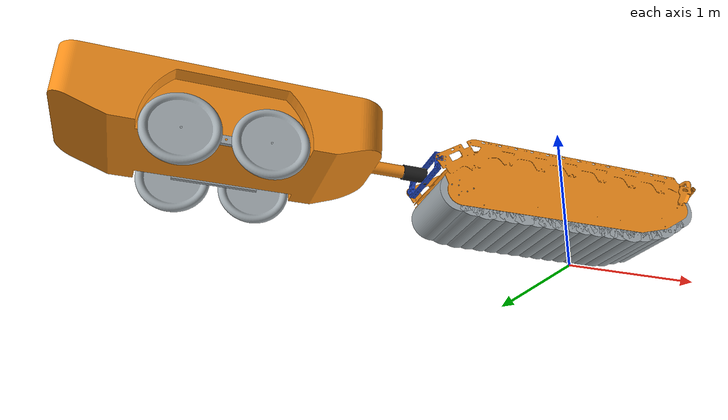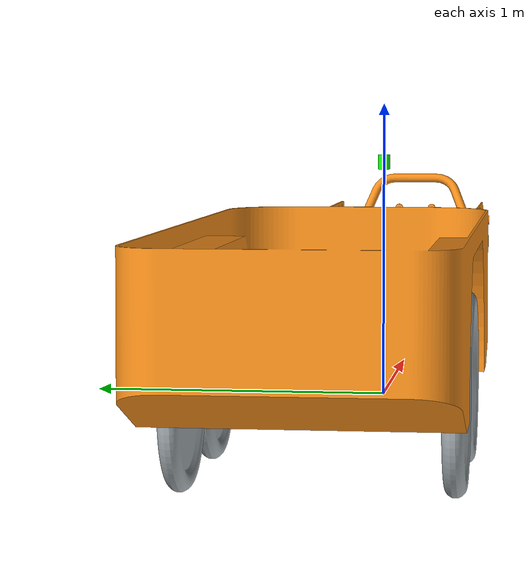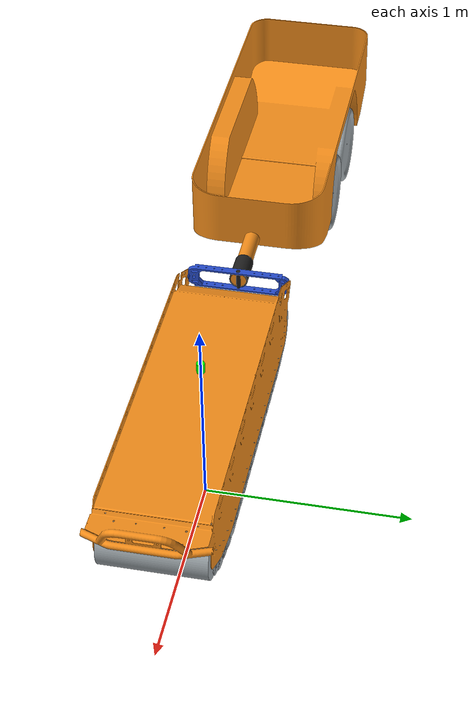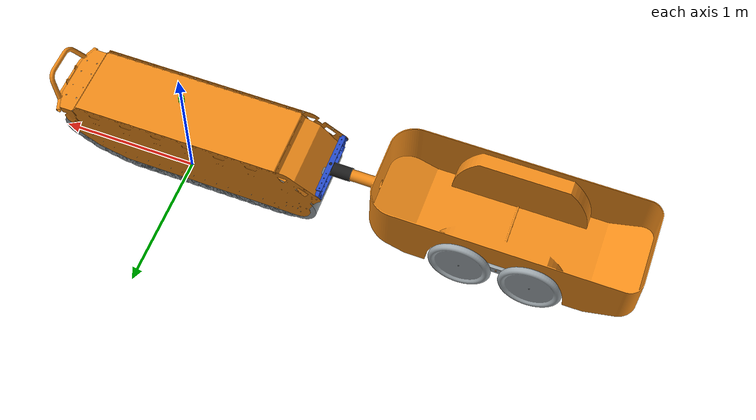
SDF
<sdf version='1.11'>
  <model name='mtt_robot'>
    <!-- Ground-truth OdometryPublisher plugin (moved to model scope so it reliably loads) -->
    <plugin filename='gz-sim-odometry-publisher-system' name='gz::sim::systems::OdometryPublisher'>
      <odom_frame>odom</odom_frame>
      <!-- Use canonical link base_footprint for plugin internal kinematics -->
      <robot_base_frame>base_footprint</robot_base_frame>
      <odom_publish_frequency>50</odom_publish_frequency>
      <dimensions>3</dimensions>
      <xyz_offset>0 0 0</xyz_offset>
      <rpy_offset>0 0 0</rpy_offset>
      <gaussian_noise>0</gaussian_noise>
    </plugin>
    <link name='base_footprint'>
      <inertial>
        <pose>-0.077863512481969974 -0.045475056286235993 0.30071250299806379 0 0 0</pose>
        <mass>150.09999999999999</mass>
        <inertia>
          <ixx>11.07325235560636</ixx>
          <ixy>-0.00035432081778363772</ixy>
          <ixz>-0.0038902195773733439</ixz>
          <iyy>58.294452096505921</iyy>
          <iyz>-0.002272026378053571</iyz>
          <izz>63.680913612779193</izz>
        </inertia>
      </inertial>
      <collision name='base_footprint_fixed_joint_lump__MTT_body_collision'>
        <pose>-0.0034808381178577409 -0.051022168970358453 0.59330103716210747 0 0 3.1415926535897931</pose>
        <geometry>
          <mesh>
            <scale>1 1 1</scale>
            <uri>file://$(find mtt_description)/meshes/collision/boitecollisionmtt_simple.stl</uri>
          </mesh>
        </geometry>
        <surface>
          <contact>
            <ode/>
          </contact>
          <friction>
            <ode/>
          </friction>
        </surface>
      </collision>
      <collision name='base_footprint_fixed_joint_lump__lidar_link_collision_1'>
        <pose>0 0 0.80000000000000004 0 0 0</pose>
        <geometry>
          <cylinder>
            <length>0.050000000000000003</length>
            <radius>0.02</radius>
          </cylinder>
        </geometry>
        <surface>
          <contact>
            <ode/>
          </contact>
          <friction>
            <ode/>
          </friction>
        </surface>
      </collision>
      <visual name='base_footprint_fixed_joint_lump__MTT_body_visual'>
        <pose>-0.0034808381178577409 -0.051022168970358453 0.59330103716210747 0 0 3.1415926535897931</pose>
        <geometry>
          <mesh>
            <scale>1 1 1</scale>
            <uri>file://$(find mtt_description)/meshes/visual/m500_ra-02_r02.stl</uri>
          </mesh>
        </geometry>
        <material>
          <script>
            <name>Gazebo/Orange</name>
            <uri>file://media/materials/scripts/gazebo.material</uri>
          </script>
          <diffuse>1 0.892156899 0.00490196096 1</diffuse>
          <ambient>1 0.892156899 0.00490196096 1</ambient>
        </material>
      </visual>
      <visual name='base_footprint_fixed_joint_lump__lidar_link_visual_1'>
        <pose>0 0 0.80000000000000004 0 0 0</pose>
        <geometry>
          <cylinder>
            <length>0.050000000000000003</length>
            <radius>0.02</radius>
          </cylinder>
        </geometry>
        <material>
          <diffuse>0 1 0 1</diffuse>
          <ambient>0 1 0 1</ambient>
        </material>
      </visual>
      <sensor name='lidar' type='gpu_lidar'>
        <update_rate>10</update_rate>
        <ray>
          <scan>
            <horizontal>
              <samples>360</samples>
              <resolution>1</resolution>
              <min_angle>-3.1400000000000001</min_angle>
              <max_angle>3.1400000000000001</max_angle>
            </horizontal>
          </scan>
          <range>
            <min>0.10000000000000001</min>
            <max>30</max>
          </range>
        </ray>
        <pose>0 0 0.80000000000000004 0 0 0</pose>
      </sensor>
    </link>
    <!-- base_link alias for Nav2 / TF compatibility -->
    <link name='base_link'>
      <pose relative_to='base_footprint'>0 0 0 0 0 0</pose>
    </link>
    <joint name='base_link_joint' type='fixed'>
      <parent>base_footprint</parent>
      <child>base_link</child>
    </joint>
    <joint name='10_continuous' type='revolute'>
      <pose relative_to='base_footprint'>-0.042674791204848093 -0.30260966897135838 0.23720533291369941 1.5707963267948959 0 -7.563394355258877e-16</pose>
      <parent>base_footprint</parent>
      <child>Rouleau_track_10</child>
      <axis>
        <xyz>0 0 1</xyz>
        <limit>
          <effort>-1</effort>
          <velocity>20</velocity>
          <lower>-inf</lower>
          <upper>inf</upper>
        </limit>
        <dynamics>
          <spring_reference>0</spring_reference>
          <spring_stiffness>0</spring_stiffness>
        </dynamics>
      </axis>
    </joint>
    <link name='Rouleau_track_10'>
      <pose relative_to='10_continuous'>0 0 0 0 0 0</pose>
      <inertial>
        <pose>-9.0830111450047394e-12 -8.2227341536032505e-12 -0.26193750000873389 0 0 0</pose>
        <mass>1</mass>
        <inertia>
          <ixx>0.025399999999999999</ixx>
          <ixy>0</ixy>
          <ixz>0</ixz>
          <iyy>0.025399999999999999</iyy>
          <iyz>0</iyz>
          <izz>0.0088900000000000003</izz>
        </inertia>
      </inertial>
      <collision name='Rouleau_track_10_collision'>
        <pose>-2.775557561562891e-17 0 -0.26193749999999999 -1.5707963267948959 -2.9274135154685974e-32 0</pose>
        <geometry>
          <mesh>
            <scale>1 1 1</scale>
            <uri>file://$(find mtt_description)/meshes/visual/rouleaufaketrack_525po.stl</uri>
          </mesh>
        </geometry>
      </collision>
      <visual name='Rouleau_track_10_visual'>
        <pose>-2.775557561562891e-17 0 -0.26193749999999999 -1.5707963267948959 -2.9274135154685974e-32 0</pose>
        <geometry>
          <mesh>
            <scale>1 1 1</scale>
            <uri>file://$(find mtt_description)/meshes/visual/rouleaufaketrack_525po.stl</uri>
          </mesh>
        </geometry>
        <material>
          <diffuse>0.632352948 0.666666687 0.686274529 1</diffuse>
          <ambient>0.632352948 0.666666687 0.686274529 1</ambient>
        </material>
      </visual>
    </link>
    <joint name='11_continuous' type='revolute'>
      <pose relative_to='base_footprint'>-0.1298179530678156 -0.30260966897135838 0.2372153534695029 1.5707963267948959 0 -7.563394355258877e-16</pose>
      <parent>base_footprint</parent>
      <child>Rouleau_track_11</child>
      <axis>
        <xyz>0 0 1</xyz>
        <limit>
          <effort>-1</effort>
          <velocity>20</velocity>
          <lower>-inf</lower>
          <upper>inf</upper>
        </limit>
        <dynamics>
          <spring_reference>0</spring_reference>
          <spring_stiffness>0</spring_stiffness>
        </dynamics>
      </axis>
    </joint>
    <link name='Rouleau_track_11'>
      <pose relative_to='11_continuous'>0 0 0 0 0 0</pose>
      <inertial>
        <pose>-9.0830111450047394e-12 -8.2227341536032505e-12 -0.26193750000873389 0 0 0</pose>
        <mass>1</mass>
        <inertia>
          <ixx>0.025399999999999999</ixx>
          <ixy>0</ixy>
          <ixz>0</ixz>
          <iyy>0.025399999999999999</iyy>
          <iyz>0</iyz>
          <izz>0.0088900000000000003</izz>
        </inertia>
      </inertial>
      <collision name='Rouleau_track_11_collision'>
        <pose>-2.775557561562891e-17 0 -0.26193749999999999 -1.5707963267948959 -2.9274135154685974e-32 0</pose>
        <geometry>
          <mesh>
            <scale>1 1 1</scale>
            <uri>file://$(find mtt_description)/meshes/visual/rouleaufaketrack_525po.stl</uri>
          </mesh>
        </geometry>
      </collision>
      <visual name='Rouleau_track_11_visual'>
        <pose>-2.775557561562891e-17 0 -0.26193749999999999 -1.5707963267948959 -2.9274135154685974e-32 0</pose>
        <geometry>
          <mesh>
            <scale>1 1 1</scale>
            <uri>file://$(find mtt_description)/meshes/visual/rouleaufaketrack_525po.stl</uri>
          </mesh>
        </geometry>
        <material>
          <diffuse>0.632352948 0.666666687 0.686274529 1</diffuse>
          <ambient>0.632352948 0.666666687 0.686274529 1</ambient>
        </material>
      </visual>
    </link>
    <joint name='12_continuous' type='revolute'>
      <pose relative_to='base_footprint'>-0.21696111493078299 -0.30260966897135833 0.2372253740253053 1.5707963267948959 0 -7.563394355258877e-16</pose>
      <parent>base_footprint</parent>
      <child>Rouleau_track_12</child>
      <axis>
        <xyz>0 0 1</xyz>
        <limit>
          <effort>-1</effort>
          <velocity>20</velocity>
          <lower>-inf</lower>
          <upper>inf</upper>
        </limit>
        <dynamics>
          <spring_reference>0</spring_reference>
          <spring_stiffness>0</spring_stiffness>
        </dynamics>
      </axis>
    </joint>
    <link name='Rouleau_track_12'>
      <pose relative_to='12_continuous'>0 0 0 0 0 0</pose>
      <inertial>
        <pose>-9.0829833894291238e-12 -8.2227341536032505e-12 -0.26193750000873389 0 0 0</pose>
        <mass>1</mass>
        <inertia>
          <ixx>0.025399999999999999</ixx>
          <ixy>0</ixy>
          <ixz>0</ixz>
          <iyy>0.025399999999999999</iyy>
          <iyz>0</iyz>
          <izz>0.0088900000000000003</izz>
        </inertia>
      </inertial>
      <collision name='Rouleau_track_12_collision'>
        <pose>0 0 -0.26193749999999999 -1.5707963267948959 -2.9274135154685974e-32 0</pose>
        <geometry>
          <mesh>
            <scale>1 1 1</scale>
            <uri>file://$(find mtt_description)/meshes/visual/rouleaufaketrack_525po.stl</uri>
          </mesh>
        </geometry>
      </collision>
      <visual name='Rouleau_track_12_visual'>
        <pose>0 0 -0.26193749999999999 -1.5707963267948959 -2.9274135154685974e-32 0</pose>
        <geometry>
          <mesh>
            <scale>1 1 1</scale>
            <uri>file://$(find mtt_description)/meshes/visual/rouleaufaketrack_525po.stl</uri>
          </mesh>
        </geometry>
        <material>
          <diffuse>0.632352948 0.666666687 0.686274529 1</diffuse>
          <ambient>0.632352948 0.666666687 0.686274529 1</ambient>
        </material>
      </visual>
    </link>
    <joint name='13_continuous' type='revolute'>
      <pose relative_to='base_footprint'>-0.30410427679375029 -0.30260966897135821 0.23723539458110779 1.5707963267948959 0 -7.563394355258877e-16</pose>
      <parent>base_footprint</parent>
      <child>Rouleau_track_13</child>
      <axis>
        <xyz>0 0 1</xyz>
        <limit>
          <effort>-1</effort>
          <velocity>20</velocity>
          <lower>-inf</lower>
          <upper>inf</upper>
        </limit>
        <dynamics>
          <spring_reference>0</spring_reference>
          <spring_stiffness>0</spring_stiffness>
        </dynamics>
      </axis>
    </joint>
    <link name='Rouleau_track_13'>
      <pose relative_to='13_continuous'>0 0 0 0 0 0</pose>
      <inertial>
        <pose>-9.0829833894291238e-12 -8.2227341536032505e-12 -0.26193750000873389 0 0 0</pose>
        <mass>1</mass>
        <inertia>
          <ixx>0.025399999999999999</ixx>
          <ixy>0</ixy>
          <ixz>0</ixz>
          <iyy>0.025399999999999999</iyy>
          <iyz>0</iyz>
          <izz>0.0088900000000000003</izz>
        </inertia>
      </inertial>
      <collision name='Rouleau_track_13_collision'>
        <pose>0 0 -0.2619375000000001 -1.5707963267948959 -2.9274135154685974e-32 0</pose>
        <geometry>
          <mesh>
            <scale>1 1 1</scale>
            <uri>file://$(find mtt_description)/meshes/visual/rouleaufaketrack_525po.stl</uri>
          </mesh>
        </geometry>
      </collision>
      <visual name='Rouleau_track_13_visual'>
        <pose>0 0 -0.2619375000000001 -1.5707963267948959 -2.9274135154685974e-32 0</pose>
        <geometry>
          <mesh>
            <scale>1 1 1</scale>
            <uri>file://$(find mtt_description)/meshes/visual/rouleaufaketrack_525po.stl</uri>
          </mesh>
        </geometry>
        <material>
          <diffuse>0.632352948 0.666666687 0.686274529 1</diffuse>
          <ambient>0.632352948 0.666666687 0.686274529 1</ambient>
        </material>
      </visual>
    </link>
    <joint name='14_continuous' type='revolute'>
      <pose relative_to='base_footprint'>-0.39124743865671768 -0.30260966897135821 0.2372454151369103 1.5707963267948959 0 -7.563394355258877e-16</pose>
      <parent>base_footprint</parent>
      <child>Rouleau_track_14</child>
      <axis>
        <xyz>0 0 1</xyz>
        <limit>
          <effort>-1</effort>
          <velocity>20</velocity>
          <lower>-inf</lower>
          <upper>inf</upper>
        </limit>
        <dynamics>
          <spring_reference>0</spring_reference>
          <spring_stiffness>0</spring_stiffness>
        </dynamics>
      </axis>
    </joint>
    <link name='Rouleau_track_14'>
      <pose relative_to='14_continuous'>0 0 0 0 0 0</pose>
      <inertial>
        <pose>-9.0830111450047394e-12 -8.2227341536032505e-12 -0.26193750000873389 0 0 0</pose>
        <mass>1</mass>
        <inertia>
          <ixx>0.025399999999999999</ixx>
          <ixy>0</ixy>
          <ixz>0</ixz>
          <iyy>0.025399999999999999</iyy>
          <iyz>0</iyz>
          <izz>0.0088900000000000003</izz>
        </inertia>
      </inertial>
      <collision name='Rouleau_track_14_collision'>
        <pose>-2.775557561562891e-17 0 -0.26193749999999999 -1.5707963267948959 -2.9274135154685974e-32 0</pose>
        <geometry>
          <mesh>
            <scale>1 1 1</scale>
            <uri>file://$(find mtt_description)/meshes/visual/rouleaufaketrack_525po.stl</uri>
          </mesh>
        </geometry>
      </collision>
      <visual name='Rouleau_track_14_visual'>
        <pose>-2.775557561562891e-17 0 -0.26193749999999999 -1.5707963267948959 -2.9274135154685974e-32 0</pose>
        <geometry>
          <mesh>
            <scale>1 1 1</scale>
            <uri>file://$(find mtt_description)/meshes/visual/rouleaufaketrack_525po.stl</uri>
          </mesh>
        </geometry>
        <material>
          <diffuse>0.632352948 0.666666687 0.686274529 1</diffuse>
          <ambient>0.632352948 0.666666687 0.686274529 1</ambient>
        </material>
      </visual>
    </link>
    <joint name='15_continuous' type='revolute'>
      <pose relative_to='base_footprint'>-0.47839060051968407 -0.30260966897135821 0.23725543569271271 1.5707963267948959 0 -7.563394355258877e-16</pose>
      <parent>base_footprint</parent>
      <child>Rouleau_track_15</child>
      <axis>
        <xyz>0 0 1</xyz>
        <limit>
          <effort>-1</effort>
          <velocity>20</velocity>
          <lower>-inf</lower>
          <upper>inf</upper>
        </limit>
        <dynamics>
          <spring_reference>0</spring_reference>
          <spring_stiffness>0</spring_stiffness>
        </dynamics>
      </axis>
    </joint>
    <link name='Rouleau_track_15'>
      <pose relative_to='15_continuous'>0 0 0 0 0 0</pose>
      <inertial>
        <pose>-9.0830111450047394e-12 -8.2227341536032505e-12 -0.26193750000873389 0 0 0</pose>
        <mass>1</mass>
        <inertia>
          <ixx>0.025399999999999999</ixx>
          <ixy>0</ixy>
          <ixz>0</ixz>
          <iyy>0.025399999999999999</iyy>
          <iyz>0</iyz>
          <izz>0.0088900000000000003</izz>
        </inertia>
      </inertial>
      <collision name='Rouleau_track_15_collision'>
        <pose>-2.775557561562891e-17 0 -0.26193749999999999 -1.5707963267948959 -2.9274135154685974e-32 0</pose>
        <geometry>
          <mesh>
            <scale>1 1 1</scale>
            <uri>file://$(find mtt_description)/meshes/visual/rouleaufaketrack_525po.stl</uri>
          </mesh>
        </geometry>
      </collision>
      <visual name='Rouleau_track_15_visual'>
        <pose>-2.775557561562891e-17 0 -0.26193749999999999 -1.5707963267948959 -2.9274135154685974e-32 0</pose>
        <geometry>
          <mesh>
            <scale>1 1 1</scale>
            <uri>file://$(find mtt_description)/meshes/visual/rouleaufaketrack_525po.stl</uri>
          </mesh>
        </geometry>
        <material>
          <diffuse>0.632352948 0.666666687 0.686274529 1</diffuse>
          <ambient>0.632352948 0.666666687 0.686274529 1</ambient>
        </material>
      </visual>
    </link>
    <joint name='16_continuous' type='revolute'>
      <pose relative_to='base_footprint'>-0.56553376238265152 -0.30260966897135799 0.23726545624851519 1.5707963267948959 0 -7.563394355258877e-16</pose>
      <parent>base_footprint</parent>
      <child>Rouleau_track_16</child>
      <axis>
        <xyz>0 0 1</xyz>
        <limit>
          <effort>-1</effort>
          <velocity>20</velocity>
          <lower>-inf</lower>
          <upper>inf</upper>
        </limit>
        <dynamics>
          <spring_reference>0</spring_reference>
          <spring_stiffness>0</spring_stiffness>
        </dynamics>
      </axis>
    </joint>
    <link name='Rouleau_track_16'>
      <pose relative_to='16_continuous'>0 0 0 0 0 0</pose>
      <inertial>
        <pose>-9.0829278782778925e-12 -8.2227341536032505e-12 -0.26193750000873389 0 0 0</pose>
        <mass>1</mass>
        <inertia>
          <ixx>0.025399999999999999</ixx>
          <ixy>0</ixy>
          <ixz>0</ixz>
          <iyy>0.025399999999999999</iyy>
          <iyz>0</iyz>
          <izz>0.0088900000000000003</izz>
        </inertia>
      </inertial>
      <collision name='Rouleau_track_16_collision'>
        <pose>5.5511151231257827e-17 0 -0.26193749999999999 -1.5707963267948959 -2.9274135154685974e-32 0</pose>
        <geometry>
          <mesh>
            <scale>1 1 1</scale>
            <uri>file://$(find mtt_description)/meshes/visual/rouleaufaketrack_525po.stl</uri>
          </mesh>
        </geometry>
      </collision>
      <visual name='Rouleau_track_16_visual'>
        <pose>5.5511151231257827e-17 0 -0.26193749999999999 -1.5707963267948959 -2.9274135154685974e-32 0</pose>
        <geometry>
          <mesh>
            <scale>1 1 1</scale>
            <uri>file://$(find mtt_description)/meshes/visual/rouleaufaketrack_525po.stl</uri>
          </mesh>
        </geometry>
        <material>
          <diffuse>0.632352948 0.666666687 0.686274529 1</diffuse>
          <ambient>0.632352948 0.666666687 0.686274529 1</ambient>
        </material>
      </visual>
    </link>
    <joint name='17_continuous' type='revolute'>
      <pose relative_to='base_footprint'>-0.65267692424561885 -0.30260966897135799 0.2372754768043176 1.5707963267948959 0 -7.563394355258877e-16</pose>
      <parent>base_footprint</parent>
      <child>Rouleau_track_17</child>
      <axis>
        <xyz>0 0 1</xyz>
        <limit>
          <effort>-1</effort>
          <velocity>20</velocity>
          <lower>-inf</lower>
          <upper>inf</upper>
        </limit>
        <dynamics>
          <spring_reference>0</spring_reference>
          <spring_stiffness>0</spring_stiffness>
        </dynamics>
      </axis>
    </joint>
    <link name='Rouleau_track_17'>
      <pose relative_to='17_continuous'>0 0 0 0 0 0</pose>
      <inertial>
        <pose>-9.0829278782778925e-12 -8.2227341536032505e-12 -0.26193750000873389 0 0 0</pose>
        <mass>1</mass>
        <inertia>
          <ixx>0.025399999999999999</ixx>
          <ixy>0</ixy>
          <ixz>0</ixz>
          <iyy>0.025399999999999999</iyy>
          <iyz>0</iyz>
          <izz>0.0088900000000000003</izz>
        </inertia>
      </inertial>
      <collision name='Rouleau_track_17_collision'>
        <pose>5.5511151231257827e-17 0 -0.26193749999999999 -1.5707963267948959 -2.9274135154685974e-32 0</pose>
        <geometry>
          <mesh>
            <scale>1 1 1</scale>
            <uri>file://$(find mtt_description)/meshes/visual/rouleaufaketrack_525po.stl</uri>
          </mesh>
        </geometry>
      </collision>
      <visual name='Rouleau_track_17_visual'>
        <pose>5.5511151231257827e-17 0 -0.26193749999999999 -1.5707963267948959 -2.9274135154685974e-32 0</pose>
        <geometry>
          <mesh>
            <scale>1 1 1</scale>
            <uri>file://$(find mtt_description)/meshes/visual/rouleaufaketrack_525po.stl</uri>
          </mesh>
        </geometry>
        <material>
          <diffuse>0.632352948 0.666666687 0.686274529 1</diffuse>
          <ambient>0.632352948 0.666666687 0.686274529 1</ambient>
        </material>
      </visual>
    </link>
    <joint name='18_continuous' type='revolute'>
      <pose relative_to='base_footprint'>-0.73982008610858641 -0.30260966897135788 0.23728549736012011 1.5707963267948959 0 -7.563394355258877e-16</pose>
      <parent>base_footprint</parent>
      <child>Rouleau_track_18</child>
      <axis>
        <xyz>0 0 1</xyz>
        <limit>
          <effort>-1</effort>
          <velocity>20</velocity>
          <lower>-inf</lower>
          <upper>inf</upper>
        </limit>
        <dynamics>
          <spring_reference>0</spring_reference>
          <spring_stiffness>0</spring_stiffness>
        </dynamics>
      </axis>
    </joint>
    <link name='Rouleau_track_18'>
      <pose relative_to='18_continuous'>0 0 0 0 0 0</pose>
      <inertial>
        <pose>-9.0829278782778925e-12 -8.2227341536032505e-12 -0.26193750000873389 0 0 0</pose>
        <mass>1</mass>
        <inertia>
          <ixx>0.025399999999999999</ixx>
          <ixy>0</ixy>
          <ixz>0</ixz>
          <iyy>0.025399999999999999</iyy>
          <iyz>0</iyz>
          <izz>0.0088900000000000003</izz>
        </inertia>
      </inertial>
      <collision name='Rouleau_track_18_collision'>
        <pose>5.5511151231257827e-17 0 -0.2619375000000001 -1.5707963267948959 -2.9274135154685974e-32 0</pose>
        <geometry>
          <mesh>
            <scale>1 1 1</scale>
            <uri>file://$(find mtt_description)/meshes/visual/rouleaufaketrack_525po.stl</uri>
          </mesh>
        </geometry>
      </collision>
      <visual name='Rouleau_track_18_visual'>
        <pose>5.5511151231257827e-17 0 -0.2619375000000001 -1.5707963267948959 -2.9274135154685974e-32 0</pose>
        <geometry>
          <mesh>
            <scale>1 1 1</scale>
            <uri>file://$(find mtt_description)/meshes/visual/rouleaufaketrack_525po.stl</uri>
          </mesh>
        </geometry>
        <material>
          <diffuse>0.632352948 0.666666687 0.686274529 1</diffuse>
          <ambient>0.632352948 0.666666687 0.686274529 1</ambient>
        </material>
      </visual>
    </link>
    <joint name='19_continuous' type='revolute'>
      <pose relative_to='base_footprint'>-0.825954608947019 -0.30260966897135783 0.24666682073043031 1.5707963267948959 0 -7.563394355258877e-16</pose>
      <parent>base_footprint</parent>
      <child>Rouleau_track_19</child>
      <axis>
        <xyz>0 0 1</xyz>
        <limit>
          <effort>-1</effort>
          <velocity>20</velocity>
          <lower>-inf</lower>
          <upper>inf</upper>
        </limit>
        <dynamics>
          <spring_reference>0</spring_reference>
          <spring_stiffness>0</spring_stiffness>
        </dynamics>
      </axis>
    </joint>
    <link name='Rouleau_track_19'>
      <pose relative_to='19_continuous'>0 0 0 0 0 0</pose>
      <inertial>
        <pose>-9.0829833894291238e-12 -8.2227341536032505e-12 -0.26193750000873389 0 0 0</pose>
        <mass>1</mass>
        <inertia>
          <ixx>0.025399999999999999</ixx>
          <ixy>0</ixy>
          <ixz>0</ixz>
          <iyy>0.025399999999999999</iyy>
          <iyz>0</iyz>
          <izz>0.0088900000000000003</izz>
        </inertia>
      </inertial>
      <collision name='Rouleau_track_19_collision'>
        <pose>0 0 -0.26193749999999999 -1.5707963267948959 -2.9274135154685974e-32 0</pose>
        <geometry>
          <mesh>
            <scale>1 1 1</scale>
            <uri>file://$(find mtt_description)/meshes/visual/rouleaufaketrack_525po.stl</uri>
          </mesh>
        </geometry>
      </collision>
      <visual name='Rouleau_track_19_visual'>
        <pose>0 0 -0.26193749999999999 -1.5707963267948959 -2.9274135154685974e-32 0</pose>
        <geometry>
          <mesh>
            <scale>1 1 1</scale>
            <uri>file://$(find mtt_description)/meshes/visual/rouleaufaketrack_525po.stl</uri>
          </mesh>
        </geometry>
        <material>
          <diffuse>0.632352948 0.666666687 0.686274529 1</diffuse>
          <ambient>0.632352948 0.666666687 0.686274529 1</ambient>
        </material>
      </visual>
    </link>
    <joint name='1_continuous' type='revolute'>
      <pose relative_to='base_footprint'>0.70146757632194523 -0.30260966897135899 0.39942602155526369 1.5707963267948959 0 -7.563394355258877e-16</pose>
      <parent>base_footprint</parent>
      <child>Rouleau_track_1</child>
      <axis>
        <xyz>0 0 1</xyz>
        <limit>
          <effort>-1</effort>
          <velocity>20</velocity>
          <lower>-inf</lower>
          <upper>inf</upper>
        </limit>
        <dynamics>
          <spring_reference>0</spring_reference>
          <spring_stiffness>0</spring_stiffness>
        </dynamics>
      </axis>
    </joint>
    <link name='Rouleau_track_1'>
      <pose relative_to='1_continuous'>0 0 0 0 0 0</pose>
      <inertial>
        <pose>-9.0829833894291238e-12 -8.2227341536032505e-12 -0.26193750000873389 0 0 0</pose>
        <mass>1</mass>
        <inertia>
          <ixx>0.025399999999999999</ixx>
          <ixy>0</ixy>
          <ixz>0</ixz>
          <iyy>0.025399999999999999</iyy>
          <iyz>0</iyz>
          <izz>0.0088900000000000003</izz>
        </inertia>
      </inertial>
      <collision name='Rouleau_track_1_collision'>
        <pose>0 0 -0.26193749999999999 -1.5707963267948959 -7.7037197775474107e-33 0</pose>
        <geometry>
          <mesh>
            <scale>1 1 1</scale>
            <uri>file://$(find mtt_description)/meshes/visual/rouleaufaketrack_525po.stl</uri>
          </mesh>
        </geometry>
      </collision>
      <visual name='Rouleau_track_1_visual'>
        <pose>0 0 -0.26193749999999999 -1.5707963267948959 -7.7037197775474107e-33 0</pose>
        <geometry>
          <mesh>
            <scale>1 1 1</scale>
            <uri>file://$(find mtt_description)/meshes/visual/rouleaufaketrack_525po.stl</uri>
          </mesh>
        </geometry>
        <material>
          <diffuse>0.632352948 0.666666687 0.686274529 1</diffuse>
          <ambient>0.632352948 0.666666687 0.686274529 1</ambient>
        </material>
      </visual>
    </link>
    <joint name='20_continuous' type='revolute'>
      <pose relative_to='base_footprint'>-0.91110403062049183 -0.30260966897135783 0.26520075578373009 1.5707963267948959 0 -7.563394355258877e-16</pose>
      <parent>base_footprint</parent>
      <child>Rouleau_track_20</child>
      <axis>
        <xyz>0 0 1</xyz>
        <limit>
          <effort>-1</effort>
          <velocity>20</velocity>
          <lower>-inf</lower>
          <upper>inf</upper>
        </limit>
        <dynamics>
          <spring_reference>0</spring_reference>
          <spring_stiffness>0</spring_stiffness>
        </dynamics>
      </axis>
    </joint>
    <link name='Rouleau_track_20'>
      <pose relative_to='20_continuous'>0 0 0 0 0 0</pose>
      <inertial>
        <pose>-9.0829833894291238e-12 -8.2227480313910583e-12 -0.26193750000873389 0 0 0</pose>
        <mass>1</mass>
        <inertia>
          <ixx>0.025399999999999999</ixx>
          <ixy>0</ixy>
          <ixz>0</ixz>
          <iyy>0.025399999999999999</iyy>
          <iyz>0</iyz>
          <izz>0.0088900000000000003</izz>
        </inertia>
      </inertial>
      <collision name='Rouleau_track_20_collision'>
        <pose>0 -1.387778780781446e-17 -0.26193749999999999 -1.5707963267948959 1.0785207688568649e-32 0</pose>
        <geometry>
          <mesh>
            <scale>1 1 1</scale>
            <uri>file://$(find mtt_description)/meshes/visual/rouleaufaketrack_525po.stl</uri>
          </mesh>
        </geometry>
      </collision>
      <visual name='Rouleau_track_20_visual'>
        <pose>0 -1.387778780781446e-17 -0.26193749999999999 -1.5707963267948959 1.0785207688568649e-32 0</pose>
        <geometry>
          <mesh>
            <scale>1 1 1</scale>
            <uri>file://$(find mtt_description)/meshes/visual/rouleaufaketrack_525po.stl</uri>
          </mesh>
        </geometry>
        <material>
          <diffuse>0.632352948 0.666666687 0.686274529 1</diffuse>
          <ambient>0.632352948 0.666666687 0.686274529 1</ambient>
        </material>
      </visual>
    </link>
    <joint name='2_continuous' type='revolute'>
      <pose relative_to='base_footprint'>0.63021293776953013 -0.30260966897135899 0.3492592273116939 1.5707963267948959 0 -7.563394355258877e-16</pose>
      <parent>base_footprint</parent>
      <child>Rouleau_track_2</child>
      <axis>
        <xyz>0 0 1</xyz>
        <limit>
          <effort>-1</effort>
          <velocity>20</velocity>
          <lower>-inf</lower>
          <upper>inf</upper>
        </limit>
        <dynamics>
          <spring_reference>0</spring_reference>
          <spring_stiffness>0</spring_stiffness>
        </dynamics>
      </axis>
    </joint>
    <link name='Rouleau_track_2'>
      <pose relative_to='2_continuous'>0 0 0 0 0 0</pose>
      <inertial>
        <pose>-9.0829833894291238e-12 -8.2227341536032505e-12 -0.26193750000873389 0 0 0</pose>
        <mass>1</mass>
        <inertia>
          <ixx>0.025399999999999999</ixx>
          <ixy>0</ixy>
          <ixz>0</ixz>
          <iyy>0.025399999999999999</iyy>
          <iyz>0</iyz>
          <izz>0.0088900000000000003</izz>
        </inertia>
      </inertial>
      <collision name='Rouleau_track_2_collision'>
        <pose>0 0 -0.26193749999999999 -1.5707963267948959 -7.7037197775474107e-33 0</pose>
        <geometry>
          <mesh>
            <scale>1 1 1</scale>
            <uri>file://$(find mtt_description)/meshes/visual/rouleaufaketrack_525po.stl</uri>
          </mesh>
        </geometry>
      </collision>
      <visual name='Rouleau_track_2_visual'>
        <pose>0 0 -0.26193749999999999 -1.5707963267948959 -7.7037197775474107e-33 0</pose>
        <geometry>
          <mesh>
            <scale>1 1 1</scale>
            <uri>file://$(find mtt_description)/meshes/visual/rouleaufaketrack_525po.stl</uri>
          </mesh>
        </geometry>
        <material>
          <diffuse>0.632352948 0.666666687 0.686274529 1</diffuse>
          <ambient>0.632352948 0.666666687 0.686274529 1</ambient>
        </material>
      </visual>
    </link>
    <joint name='3_continuous' type='revolute'>
      <pose relative_to='base_footprint'>0.55767703136521962 -0.30260966897135888 0.30171053820694732 1.5707963267948959 0 -7.563394355258877e-16</pose>
      <parent>base_footprint</parent>
      <child>Rouleau_track_3</child>
      <axis>
        <xyz>0 0 1</xyz>
        <limit>
          <effort>-1</effort>
          <velocity>20</velocity>
          <lower>-inf</lower>
          <upper>inf</upper>
        </limit>
        <dynamics>
          <spring_reference>0</spring_reference>
          <spring_stiffness>0</spring_stiffness>
        </dynamics>
      </axis>
    </joint>
    <link name='Rouleau_track_3'>
      <pose relative_to='3_continuous'>0 0 0 0 0 0</pose>
      <inertial>
        <pose>-9.0829833894291238e-12 -8.2227341536032505e-12 -0.26193750000873389 0 0 0</pose>
        <mass>1</mass>
        <inertia>
          <ixx>0.025399999999999999</ixx>
          <ixy>0</ixy>
          <ixz>0</ixz>
          <iyy>0.025399999999999999</iyy>
          <iyz>0</iyz>
          <izz>0.0088900000000000003</izz>
        </inertia>
      </inertial>
      <collision name='Rouleau_track_3_collision'>
        <pose>0 0 -0.26193749999999999 -1.5707963267948959 -2.9274135154685974e-32 0</pose>
        <geometry>
          <mesh>
            <scale>1 1 1</scale>
            <uri>file://$(find mtt_description)/meshes/visual/rouleaufaketrack_525po.stl</uri>
          </mesh>
        </geometry>
      </collision>
      <visual name='Rouleau_track_3_visual'>
        <pose>0 0 -0.26193749999999999 -1.5707963267948959 -2.9274135154685974e-32 0</pose>
        <geometry>
          <mesh>
            <scale>1 1 1</scale>
            <uri>file://$(find mtt_description)/meshes/visual/rouleaufaketrack_525po.stl</uri>
          </mesh>
        </geometry>
        <material>
          <diffuse>0.632352948 0.666666687 0.686274529 1</diffuse>
          <ambient>0.632352948 0.666666687 0.686274529 1</ambient>
        </material>
      </visual>
    </link>
    <joint name='4_continuous' type='revolute'>
      <pose relative_to='base_footprint'>0.4743441239043048 -0.30260966897135888 0.27622412429685811 1.5707963267948959 0 -7.563394355258877e-16</pose>
      <parent>base_footprint</parent>
      <child>Rouleau_track_4</child>
      <axis>
        <xyz>0 0 1</xyz>
        <limit>
          <effort>-1</effort>
          <velocity>20</velocity>
          <lower>-inf</lower>
          <upper>inf</upper>
        </limit>
        <dynamics>
          <spring_reference>0</spring_reference>
          <spring_stiffness>0</spring_stiffness>
        </dynamics>
      </axis>
    </joint>
    <link name='Rouleau_track_4'>
      <pose relative_to='4_continuous'>0 0 0 0 0 0</pose>
      <inertial>
        <pose>-9.0829833894291238e-12 -8.2227341536032505e-12 -0.26193750000873389 0 0 0</pose>
        <mass>1</mass>
        <inertia>
          <ixx>0.025399999999999999</ixx>
          <ixy>0</ixy>
          <ixz>0</ixz>
          <iyy>0.025399999999999999</iyy>
          <iyz>0</iyz>
          <izz>0.0088900000000000003</izz>
        </inertia>
      </inertial>
      <collision name='Rouleau_track_4_collision'>
        <pose>0 0 -0.26193749999999999 -1.5707963267948959 -2.9274135154685974e-32 0</pose>
        <geometry>
          <mesh>
            <scale>1 1 1</scale>
            <uri>file://$(find mtt_description)/meshes/visual/rouleaufaketrack_525po.stl</uri>
          </mesh>
        </geometry>
      </collision>
      <visual name='Rouleau_track_4_visual'>
        <pose>0 0 -0.26193749999999999 -1.5707963267948959 -2.9274135154685974e-32 0</pose>
        <geometry>
          <mesh>
            <scale>1 1 1</scale>
            <uri>file://$(find mtt_description)/meshes/visual/rouleaufaketrack_525po.stl</uri>
          </mesh>
        </geometry>
        <material>
          <diffuse>0.632352948 0.666666687 0.686274529 1</diffuse>
          <ambient>0.632352948 0.666666687 0.686274529 1</ambient>
        </material>
      </visual>
    </link>
    <joint name='5_continuous' type='revolute'>
      <pose relative_to='base_footprint'>0.39101121644338022 -0.30260966897135883 0.25073771038676879 1.5707963267948959 0 -7.563394355258877e-16</pose>
      <parent>base_footprint</parent>
      <child>Rouleau_track_5</child>
      <axis>
        <xyz>0 0 1</xyz>
        <limit>
          <effort>-1</effort>
          <velocity>20</velocity>
          <lower>-inf</lower>
          <upper>inf</upper>
        </limit>
        <dynamics>
          <spring_reference>0</spring_reference>
          <spring_stiffness>0</spring_stiffness>
        </dynamics>
      </axis>
    </joint>
    <link name='Rouleau_track_5'>
      <pose relative_to='5_continuous'>0 0 0 0 0 0</pose>
      <inertial>
        <pose>-9.0829833894291238e-12 -8.2227341536032505e-12 -0.26193750000873389 0 0 0</pose>
        <mass>1</mass>
        <inertia>
          <ixx>0.025399999999999999</ixx>
          <ixy>0</ixy>
          <ixz>0</ixz>
          <iyy>0.025399999999999999</iyy>
          <iyz>0</iyz>
          <izz>0.0088900000000000003</izz>
        </inertia>
      </inertial>
      <collision name='Rouleau_track_5_collision'>
        <pose>0 0 -0.26193749999999999 -1.5707963267948959 -2.9274135154685974e-32 0</pose>
        <geometry>
          <mesh>
            <scale>1 1 1</scale>
            <uri>file://$(find mtt_description)/meshes/visual/rouleaufaketrack_525po.stl</uri>
          </mesh>
        </geometry>
      </collision>
      <visual name='Rouleau_track_5_visual'>
        <pose>0 0 -0.26193749999999999 -1.5707963267948959 -2.9274135154685974e-32 0</pose>
        <geometry>
          <mesh>
            <scale>1 1 1</scale>
            <uri>file://$(find mtt_description)/meshes/visual/rouleaufaketrack_525po.stl</uri>
          </mesh>
        </geometry>
        <material>
          <diffuse>0.632352948 0.666666687 0.686274529 1</diffuse>
          <ambient>0.632352948 0.666666687 0.686274529 1</ambient>
        </material>
      </visual>
    </link>
    <joint name='6_continuous' type='revolute'>
      <pose relative_to='base_footprint'>0.30589785624702448 -0.30260966897135871 0.2371652506904896 1.5707963267948959 0 -7.563394355258877e-16</pose>
      <parent>base_footprint</parent>
      <child>Rouleau_track_6</child>
      <axis>
        <xyz>0 0 1</xyz>
        <limit>
          <effort>-1</effort>
          <velocity>20</velocity>
          <lower>-inf</lower>
          <upper>inf</upper>
        </limit>
        <dynamics>
          <spring_reference>0</spring_reference>
          <spring_stiffness>0</spring_stiffness>
        </dynamics>
      </axis>
    </joint>
    <link name='Rouleau_track_6'>
      <pose relative_to='6_continuous'>0 0 0 0 0 0</pose>
      <inertial>
        <pose>-9.0829833894291238e-12 -8.2227341536032505e-12 -0.26193750000873389 0 0 0</pose>
        <mass>1</mass>
        <inertia>
          <ixx>0.025399999999999999</ixx>
          <ixy>0</ixy>
          <ixz>0</ixz>
          <iyy>0.025399999999999999</iyy>
          <iyz>0</iyz>
          <izz>0.0088900000000000003</izz>
        </inertia>
      </inertial>
      <collision name='Rouleau_track_6_collision'>
        <pose>0 0 -0.26193749999999999 -1.5707963267948959 -2.9274135154685974e-32 0</pose>
        <geometry>
          <mesh>
            <scale>1 1 1</scale>
            <uri>file://$(find mtt_description)/meshes/visual/rouleaufaketrack_525po.stl</uri>
          </mesh>
        </geometry>
      </collision>
      <visual name='Rouleau_track_6_visual'>
        <pose>0 0 -0.26193749999999999 -1.5707963267948959 -2.9274135154685974e-32 0</pose>
        <geometry>
          <mesh>
            <scale>1 1 1</scale>
            <uri>file://$(find mtt_description)/meshes/visual/rouleaufaketrack_525po.stl</uri>
          </mesh>
        </geometry>
        <material>
          <diffuse>0.632352948 0.666666687 0.686274529 1</diffuse>
          <ambient>0.632352948 0.666666687 0.686274529 1</ambient>
        </material>
      </visual>
    </link>
    <joint name='7_continuous' type='revolute'>
      <pose relative_to='base_footprint'>0.2187546943840542 -0.30260966897135871 0.23717527124629201 1.5707963267948959 0 -7.563394355258877e-16</pose>
      <parent>base_footprint</parent>
      <child>Rouleau_track_7</child>
      <axis>
        <xyz>0 0 1</xyz>
        <limit>
          <effort>-1</effort>
          <velocity>20</velocity>
          <lower>-inf</lower>
          <upper>inf</upper>
        </limit>
        <dynamics>
          <spring_reference>0</spring_reference>
          <spring_stiffness>0</spring_stiffness>
        </dynamics>
      </axis>
    </joint>
    <link name='Rouleau_track_7'>
      <pose relative_to='7_continuous'>0 0 0 0 0 0</pose>
      <inertial>
        <pose>-9.0829278782778925e-12 -8.2227341536032505e-12 -0.26193750000873389 0 0 0</pose>
        <mass>1</mass>
        <inertia>
          <ixx>0.025399999999999999</ixx>
          <ixy>0</ixy>
          <ixz>0</ixz>
          <iyy>0.025399999999999999</iyy>
          <iyz>0</iyz>
          <izz>0.0088900000000000003</izz>
        </inertia>
      </inertial>
      <collision name='Rouleau_track_7_collision'>
        <pose>5.5511151231257827e-17 0 -0.26193749999999999 -1.5707963267948959 -2.9274135154685974e-32 0</pose>
        <geometry>
          <mesh>
            <scale>1 1 1</scale>
            <uri>file://$(find mtt_description)/meshes/visual/rouleaufaketrack_525po.stl</uri>
          </mesh>
        </geometry>
      </collision>
      <visual name='Rouleau_track_7_visual'>
        <pose>5.5511151231257827e-17 0 -0.26193749999999999 -1.5707963267948959 -2.9274135154685974e-32 0</pose>
        <geometry>
          <mesh>
            <scale>1 1 1</scale>
            <uri>file://$(find mtt_description)/meshes/visual/rouleaufaketrack_525po.stl</uri>
          </mesh>
        </geometry>
        <material>
          <diffuse>0.632352948 0.666666687 0.686274529 1</diffuse>
          <ambient>0.632352948 0.666666687 0.686274529 1</ambient>
        </material>
      </visual>
    </link>
    <joint name='8_continuous' type='revolute'>
      <pose relative_to='base_footprint'>0.13161153252108559 -0.30260966897135871 0.23718529180209449 1.5707963267948959 0 -7.563394355258877e-16</pose>
      <parent>base_footprint</parent>
      <child>Rouleau_track_8</child>
      <axis>
        <xyz>0 0 1</xyz>
        <limit>
          <effort>-1</effort>
          <velocity>20</velocity>
          <lower>-inf</lower>
          <upper>inf</upper>
        </limit>
        <dynamics>
          <spring_reference>0</spring_reference>
          <spring_stiffness>0</spring_stiffness>
        </dynamics>
      </axis>
    </joint>
    <link name='Rouleau_track_8'>
      <pose relative_to='8_continuous'>0 0 0 0 0 0</pose>
      <inertial>
        <pose>-9.0829278782778925e-12 -8.2227341536032505e-12 -0.26193750000873389 0 0 0</pose>
        <mass>1</mass>
        <inertia>
          <ixx>0.025399999999999999</ixx>
          <ixy>0</ixy>
          <ixz>0</ixz>
          <iyy>0.025399999999999999</iyy>
          <iyz>0</iyz>
          <izz>0.0088900000000000003</izz>
        </inertia>
      </inertial>
      <collision name='Rouleau_track_8_collision'>
        <pose>5.5511151231257827e-17 0 -0.26193749999999999 -1.5707963267948959 -2.9274135154685974e-32 0</pose>
        <geometry>
          <mesh>
            <scale>1 1 1</scale>
            <uri>file://$(find mtt_description)/meshes/visual/rouleaufaketrack_525po.stl</uri>
          </mesh>
        </geometry>
      </collision>
      <visual name='Rouleau_track_8_visual'>
        <pose>5.5511151231257827e-17 0 -0.26193749999999999 -1.5707963267948959 -2.9274135154685974e-32 0</pose>
        <geometry>
          <mesh>
            <scale>1 1 1</scale>
            <uri>file://$(find mtt_description)/meshes/visual/rouleaufaketrack_525po.stl</uri>
          </mesh>
        </geometry>
        <material>
          <diffuse>0.632352948 0.666666687 0.686274529 1</diffuse>
          <ambient>0.632352948 0.666666687 0.686274529 1</ambient>
        </material>
      </visual>
    </link>
    <joint name='9_continuous' type='revolute'>
      <pose relative_to='base_footprint'>0.044468370658119268 -0.30260966897135849 0.23719531235789701 1.5707963267948959 0 -7.563394355258877e-16</pose>
      <parent>base_footprint</parent>
      <child>Rouleau_track_9</child>
      <axis>
        <xyz>0 0 1</xyz>
        <limit>
          <effort>-1</effort>
          <velocity>20</velocity>
          <lower>-inf</lower>
          <upper>inf</upper>
        </limit>
        <dynamics>
          <spring_reference>0</spring_reference>
          <spring_stiffness>0</spring_stiffness>
        </dynamics>
      </axis>
    </joint>
    <link name='Rouleau_track_9'>
      <pose relative_to='9_continuous'>0 0 0 0 0 0</pose>
      <inertial>
        <pose>-9.0829278782778925e-12 -8.2227341536032505e-12 -0.26193750000873389 0 0 0</pose>
        <mass>1</mass>
        <inertia>
          <ixx>0.025399999999999999</ixx>
          <ixy>0</ixy>
          <ixz>0</ixz>
          <iyy>0.025399999999999999</iyy>
          <iyz>0</iyz>
          <izz>0.0088900000000000003</izz>
        </inertia>
      </inertial>
      <collision name='Rouleau_track_9_collision'>
        <pose>5.5511151231257827e-17 0 -0.26193749999999999 -1.5707963267948959 -2.9274135154685974e-32 0</pose>
        <geometry>
          <mesh>
            <scale>1 1 1</scale>
            <uri>file://$(find mtt_description)/meshes/visual/rouleaufaketrack_525po.stl</uri>
          </mesh>
        </geometry>
      </collision>
      <visual name='Rouleau_track_9_visual'>
        <pose>5.5511151231257827e-17 0 -0.26193749999999999 -1.5707963267948959 -2.9274135154685974e-32 0</pose>
        <geometry>
          <mesh>
            <scale>1 1 1</scale>
            <uri>file://$(find mtt_description)/meshes/visual/rouleaufaketrack_525po.stl</uri>
          </mesh>
        </geometry>
        <material>
          <diffuse>0.632352948 0.666666687 0.686274529 1</diffuse>
          <ambient>0.632352948 0.666666687 0.686274529 1</ambient>
        </material>
      </visual>
    </link>
    <joint name='pitch' type='revolute'>
      <pose relative_to='base_footprint'>-1.051187837601858 0.2125028310306423 0.45775105114691778 -1.5707963267948959 0 -7.563394355258877e-16</pose>
      <parent>base_footprint</parent>
      <child>Frame_fixation_articule</child>
      <axis>
        <xyz>0 0 1</xyz>
        <limit>
          <lower>-1.570796326794897</lower>
          <upper>1.570796326794897</upper>
          <effort>-1</effort>
          <velocity>20</velocity>
        </limit>
        <dynamics>
          <spring_reference>0</spring_reference>
          <spring_stiffness>0</spring_stiffness>
        </dynamics>
      </axis>
    </joint>
    <link name='Frame_fixation_articule'>
      <pose relative_to='pitch'>0 0 0 0 0 0</pose>
      <inertial>
        <pose>-3.9892756405493079e-11 -1.1475286443859221e-10 -0.26817516801928171 0 0 0</pose>
        <mass>4.2856980941026048</mass>
        <inertia>
          <ixx>0.15081833822080551</ixx>
          <ixy>-3.1493952847483553e-14</ixy>
          <ixz>-2.729130143354647e-09</ixz>
          <iyy>0.14291517499876991</iyy>
          <iyz>4.1782617806359028e-10</iyz>
          <izz>0.008772976040851534</izz>
        </inertia>
      </inertial>
      <collision name='Frame_fixation_articule_collision'>
        <pose>0 0 -0.26352500000103002 1.5707963267948959 2.9274135154685974e-32 0</pose>
        <geometry>
          <mesh>
            <scale>1 1 1</scale>
            <uri>file://$(find mtt_description)/meshes/visual/m500_fa-f-01_r00.stl</uri>
          </mesh>
        </geometry>
        <surface>
          <contact>
            <ode/>
          </contact>
          <friction>
            <ode/>
          </friction>
        </surface>
      </collision>
      <visual name='Frame_fixation_articule_visual'>
        <pose>0 0 -0.26352500000103002 1.5707963267948959 2.9274135154685974e-32 0</pose>
        <geometry>
          <mesh>
            <scale>1 1 1</scale>
            <uri>file://$(find mtt_description)/meshes/visual/m500_fa-f-01_r00.stl</uri>
          </mesh>
        </geometry>
        <material>
          <script>
            <name>Gazebo/Blue</name>
            <uri>file://media/materials/scripts/gazebo.material</uri>
          </script>
          <diffuse>1 0.892156899 0.00490196096 1</diffuse>
          <ambient>1 0.892156899 0.00490196096 1</ambient>
        </material>
      </visual>
    </link>
    <joint name='yaw' type='revolute'>
      <pose relative_to='Frame_fixation_articule'>3.9990233346998139e-13 0.057149999999500017 -0.26352500000202989 -1.5707963267948959 2.9274135154685974e-32 0</pose>
      <parent>Frame_fixation_articule</parent>
      <child>joint_remorque_simple</child>
      <axis>
        <xyz>0 0 1</xyz>
        <limit>
          <lower>-1.0471975511965981</lower>
          <upper>1.0471975511965981</upper>
          <effort>1000000000</effort>
          <velocity>20</velocity>
        </limit>
        <dynamics>
          <spring_reference>0</spring_reference>
          <spring_stiffness>0</spring_stiffness>
        </dynamics>
      </axis>
    </joint>
    <link name='joint_remorque_simple'>
      <pose relative_to='yaw'>0 0 0 0 0 0</pose>
      <inertial>
        <pose>-0.06664907839728397 -1.326404872336092e-08 -0.05714999999985157 0 0 0</pose>
        <mass>2.4244944218593218</mass>
        <inertia>
          <ixx>0.0045362397987309356</ixx>
          <ixy>2.7180197249639031e-09</ixy>
          <ixz>2.2800525023181051e-41</ixz>
          <iyy>0.0080855686635830839</iyy>
          <iyz>-9.2489917741012919e-10</iyz>
          <izz>0.0077799714228289117</izz>
        </inertia>
      </inertial>
      <collision name='joint_remorque_simple_collision'>
        <pose>0 0 -0.114299999999703 3.1415926535897931 1.094764425253763e-47 2.4651903288156619e-32</pose>
        <geometry>
          <mesh>
            <scale>1 1 1</scale>
            <uri>file://$(find mtt_description)/meshes/visual/joint_remorque_simple.stl</uri>
          </mesh>
        </geometry>
        <surface>
          <contact>
            <ode/>
          </contact>
          <friction>
            <ode/>
          </friction>
        </surface>
      </collision>
      <visual name='joint_remorque_simple_visual'>
        <pose>0 0 -0.114299999999703 3.1415926535897931 1.094764425253763e-47 2.4651903288156619e-32</pose>
        <geometry>
          <mesh>
            <scale>1 1 1</scale>
            <uri>file://$(find mtt_description)/meshes/visual/joint_remorque_simple.stl</uri>
          </mesh>
        </geometry>
        <material>
          <script>
            <name>Gazebo/Black</name>
            <uri>file://media/materials/scripts/gazebo.material</uri>
          </script>
          <diffuse>0.632352948 0.666666687 0.686274529 1</diffuse>
          <ambient>0.632352948 0.666666687 0.686274529 1</ambient>
        </material>
      </visual>
    </link>
    <joint name='roll' type='revolute'>
      <pose relative_to='joint_remorque_simple'>0 -1.110223024625157e-16 -0.057149999999851597 -1.5707963267948959 -5.5511151231257827e-17 -1.5707963267948959</pose>
      <parent>joint_remorque_simple</parent>
      <child>MTT_remorque</child>
      <axis>
        <xyz>0 0 1</xyz>
        <limit>
          <lower>-1.570796326794897</lower>
          <upper>1.570796326794897</upper>
          <effort>-1</effort>
          <velocity>20</velocity>
        </limit>
        <dynamics>
          <spring_reference>0</spring_reference>
          <spring_stiffness>0</spring_stiffness>
        </dynamics>
      </axis>
    </joint>
    <link name='MTT_remorque'>
      <pose relative_to='roll'>0 0 0 0 0 0</pose>
      <inertial>
        <pose>-1.3754218481959809e-07 0.003423650117086926 -1.2492342427482761 0 0 0</pose>
        <mass>75</mass>
        <inertia>
          <ixx>19.609999999999999</ixx>
          <ixy>1.9694375352015791e-06</ixy>
          <ixz>3.4143802835478519e-05</ixz>
          <iyy>22.119</iyy>
          <iyz>0.089480447349249051</iyz>
          <izz>4.3689999999999998</izz>
        </inertia>
      </inertial>
      <collision name='MTT_remorque_collision'>
        <pose>0 0 0 -1.5707963267948959 -2.9274135154686073e-32 0</pose>
        <geometry>
          <mesh>
            <scale>1 1 1</scale>
            <uri>file://$(find mtt_description)/meshes/collision/remorquegrise_collision.stl</uri>
          </mesh>
        </geometry>
        <surface>
          <contact>
            <ode/>
          </contact>
          <friction>
            <ode/>
          </friction>
        </surface>
      </collision>
      <visual name='MTT_remorque_visual'>
        <pose>0 0 0 -1.5707963267948959 -2.9274135154686073e-32 0</pose>
        <geometry>
          <mesh>
            <scale>1 1 1</scale>
            <uri>file://$(find mtt_description)/meshes/visual/remorquegrise_corps.stl</uri>
          </mesh>
        </geometry>
        <material>
          <script>
            <name>Gazebo/Orange</name>
            <uri>file://media/materials/scripts/gazebo.material</uri>
          </script>
          <diffuse>0.632352948 0.666666687 0.686274529 1</diffuse>
          <ambient>0.632352948 0.666666687 0.686274529 1</ambient>
        </material>
      </visual>
    </link>
    <joint name='Remorque_lien_roue_droite_joint' type='revolute'>
      <pose relative_to='MTT_remorque'>-0.27939999999999998 -0.13792199999999999 -1.27 0 -1.5707963267948966 0</pose>
      <parent>MTT_remorque</parent>
      <child>Remorque_lien_roue_droite</child>
      <axis>
        <xyz>0 0 1</xyz>
        <limit>
          <lower>-0.52359877559829882</lower>
          <upper>0.52359877559829882</upper>
          <effort>-1</effort>
          <velocity>20</velocity>
        </limit>
        <dynamics>
          <spring_reference>0</spring_reference>
          <spring_stiffness>0</spring_stiffness>
        </dynamics>
      </axis>
    </joint>
    <link name='Remorque_lien_roue_droite'>
      <pose relative_to='Remorque_lien_roue_droite_joint'>0 0 0 0 0 0</pose>
      <inertial>
        <pose>-2.2204460492503131e-16 -1.7347234759768071e-18 -0.011962764931897961 0 0 0</pose>
        <mass>1</mass>
        <inertia>
          <ixx>0.001548161430997771</ixx>
          <ixy>0</ixy>
          <ixz>-3.3987014700653987e-33</ixz>
          <iyy>0.11698078969574199</iyy>
          <iyz>0</iyz>
          <izz>0.1176472862080913</izz>
        </inertia>
      </inertial>
      <collision name='Remorque_lien_roue_droite_collision'>
        <pose>-0.46990000000101517 -0.0144779999670738 -0.02540000000000003 0 -2.9274135154685979e-32 0</pose>
        <geometry>
          <mesh>
            <scale>1 1 1</scale>
            <uri>file://$(find mtt_description)/meshes/visual/remorquebarrelienroues.stl</uri>
          </mesh>
        </geometry>
      </collision>
      <visual name='Remorque_lien_roue_droite_visual'>
        <pose>-0.46990000000101517 -0.0144779999670738 -0.02540000000000003 0 -2.9274135154685979e-32 0</pose>
        <geometry>
          <mesh>
            <scale>1 1 1</scale>
            <uri>file://$(find mtt_description)/meshes/visual/remorquebarrelienroues.stl</uri>
          </mesh>
        </geometry>
        <material>
          <diffuse>0.632352948 0.666666687 0.686274529 1</diffuse>
          <ambient>0.632352948 0.666666687 0.686274529 1</ambient>
        </material>
      </visual>
    </link>
    <joint name='backright_wheel' type='revolute'>
      <pose relative_to='Remorque_lien_roue_droite'>-0.24130000000000029 0 0.050799999999999852 0 -2.9274135154685979e-32 0</pose>
      <parent>Remorque_lien_roue_droite</parent>
      <child>remorque_roue_BR</child>
      <axis>
        <xyz>0 0 1</xyz>
        <limit>
          <effort>-1</effort>
          <velocity>20</velocity>
          <lower>-inf</lower>
          <upper>inf</upper>
        </limit>
        <dynamics>
          <spring_reference>0</spring_reference>
          <spring_stiffness>0</spring_stiffness>
        </dynamics>
      </axis>
    </joint>
    <link name='remorque_roue_BR'>
      <pose relative_to='backright_wheel'>0 0 0 0 0 0</pose>
      <inertial>
        <pose>-5.5159452104843918e-18 -3.3329708142992709e-16 -0.01270000000000001 0 0 0</pose>
        <mass>1</mass>
        <inertia>
          <ixx>0.0149</ixx>
          <ixy>0</ixy>
          <ixz>-1.374351346663825e-32</ixz>
          <iyy>0.0149</iyy>
          <iyz>0</iyz>
          <izz>0.029595</izz>
        </inertia>
      </inertial>
      <collision name='remorque_roue_BR_collision'>
        <pose>0 -3.3306690738754701e-16 0 0 -2.9274135154685979e-32 0</pose>
        <geometry>
          <mesh>
            <scale>1 1 1</scale>
            <uri>file://$(find mtt_description)/meshes/collision/remorqueroue_collision.stl</uri>
          </mesh>
        </geometry>
      </collision>
      <visual name='remorque_roue_BR_visual'>
        <pose>0 -3.3306690738754701e-16 0 0 -2.9274135154685979e-32 0</pose>
        <geometry>
          <mesh>
            <scale>1 1 1</scale>
            <uri>file://$(find mtt_description)/meshes/visual/remorqueroue.stl</uri>
          </mesh>
        </geometry>
        <material>
          <diffuse>0.632352948 0.666666687 0.686274529 1</diffuse>
          <ambient>0.632352948 0.666666687 0.686274529 1</ambient>
        </material>
      </visual>
    </link>
    <joint name='frontright_wheel' type='revolute'>
      <pose relative_to='Remorque_lien_roue_droite'>0.24129999999999979 -1.110223024625157e-16 0.050799999999999963 0 -2.9274135154685979e-32 0</pose>
      <parent>Remorque_lien_roue_droite</parent>
      <child>remorque_roue_FR</child>
      <axis>
        <xyz>0 0 1</xyz>
        <limit>
          <effort>-1</effort>
          <velocity>20</velocity>
          <lower>-inf</lower>
          <upper>inf</upper>
        </limit>
        <dynamics>
          <spring_reference>0</spring_reference>
          <spring_stiffness>0</spring_stiffness>
        </dynamics>
      </axis>
    </joint>
    <link name='remorque_roue_FR'>
      <pose relative_to='frontright_wheel'>0 0 0 0 0 0</pose>
      <inertial>
        <pose>-5.5159452104843918e-18 -3.3329708142992709e-16 -0.012699999999999949 0 0 0</pose>
        <mass>1</mass>
        <inertia>
          <ixx>0.0149</ixx>
          <ixy>0</ixy>
          <ixz>-1.374351346663825e-32</ixz>
          <iyy>0.0149</iyy>
          <iyz>0</iyz>
          <izz>0.029595</izz>
        </inertia>
      </inertial>
      <collision name='remorque_roue_FR_collision'>
        <pose>0 -3.3306690738754701e-16 5.5511151231257827e-17 0 -2.9274135154685979e-32 0</pose>
        <geometry>
          <mesh>
            <scale>1 1 1</scale>
            <uri>file://$(find mtt_description)/meshes/collision/remorqueroue_collision.stl</uri>
          </mesh>
        </geometry>
      </collision>
      <visual name='remorque_roue_FR_visual'>
        <pose>0 -3.3306690738754701e-16 5.5511151231257827e-17 0 -2.9274135154685979e-32 0</pose>
        <geometry>
          <mesh>
            <scale>1 1 1</scale>
            <uri>file://$(find mtt_description)/meshes/visual/remorqueroue.stl</uri>
          </mesh>
        </geometry>
        <material>
          <diffuse>0.632352948 0.666666687 0.686274529 1</diffuse>
          <ambient>0.632352948 0.666666687 0.686274529 1</ambient>
        </material>
      </visual>
    </link>
    <joint name='Remorque_lien_roue_gauche_joint' type='revolute'>
      <pose relative_to='MTT_remorque'>0.27939999999999998 -0.13792199999999999 -1.27 -3.1415926535897931 -1.5707963267948966 0</pose>
      <parent>MTT_remorque</parent>
      <child>Remorque_lien_roue_gauche</child>
      <axis>
        <xyz>0 0 1</xyz>
        <limit>
          <lower>-0.52359877559829882</lower>
          <upper>0.52359877559829882</upper>
          <effort>-1</effort>
          <velocity>20</velocity>
        </limit>
        <dynamics>
          <spring_reference>0</spring_reference>
          <spring_stiffness>0</spring_stiffness>
        </dynamics>
      </axis>
    </joint>
    <link name='Remorque_lien_roue_gauche'>
      <pose relative_to='Remorque_lien_roue_gauche_joint'>0 0 0 0 0 0</pose>
      <inertial>
        <pose>-2.2204460492503131e-16 -1.7347234759768071e-18 -0.011962764931897929 0 0 0</pose>
        <mass>1</mass>
        <inertia>
          <ixx>0.001548161430997771</ixx>
          <ixy>0</ixy>
          <ixz>3.3987014700653987e-33</ixz>
          <iyy>0.11698078969574199</iyy>
          <iyz>0</iyz>
          <izz>0.1176472862080913</izz>
        </inertia>
      </inertial>
      <collision name='Remorque_lien_roue_gauche_collision'>
        <pose>-0.46990000000101517 -0.0144779999670738 -0.025400000000000009 0 2.9274135154685979e-32 0</pose>
        <geometry>
          <mesh>
            <scale>1 1 1</scale>
            <uri>file://$(find mtt_description)/meshes/visual/remorquebarrelienroues.stl</uri>
          </mesh>
        </geometry>
      </collision>
      <visual name='Remorque_lien_roue_gauche_visual'>
        <pose>-0.46990000000101517 -0.0144779999670738 -0.025400000000000009 0 2.9274135154685979e-32 0</pose>
        <geometry>
          <mesh>
            <scale>1 1 1</scale>
            <uri>file://$(find mtt_description)/meshes/visual/remorquebarrelienroues.stl</uri>
          </mesh>
        </geometry>
        <material>
          <diffuse>0.632352948 0.666666687 0.686274529 1</diffuse>
          <ambient>0.632352948 0.666666687 0.686274529 1</ambient>
        </material>
      </visual>
    </link>
    <joint name='backleft_wheel' type='revolute'>
      <pose relative_to='Remorque_lien_roue_gauche'>-0.24129999999999979 0 0.050799999999999977 0 2.9274135154685979e-32 0</pose>
      <parent>Remorque_lien_roue_gauche</parent>
      <child>remorque_roue_BL</child>
      <axis>
        <xyz>0 0 1</xyz>
        <limit>
          <effort>-1</effort>
          <velocity>20</velocity>
          <lower>-inf</lower>
          <upper>inf</upper>
        </limit>
        <dynamics>
          <spring_reference>0</spring_reference>
          <spring_stiffness>0</spring_stiffness>
        </dynamics>
      </axis>
    </joint>
    <link name='remorque_roue_BL'>
      <pose relative_to='backleft_wheel'>0 0 0 0 0 0</pose>
      <inertial>
        <pose>-5.5159452104843918e-18 -3.3329708142992709e-16 -0.01270000000000001 0 0 0</pose>
        <mass>1</mass>
        <inertia>
          <ixx>0.0149</ixx>
          <ixy>0</ixy>
          <ixz>1.374351346663825e-32</ixz>
          <iyy>0.0149</iyy>
          <iyz>0</iyz>
          <izz>0.029595</izz>
        </inertia>
      </inertial>
      <collision name='remorque_roue_BL_collision'>
        <pose>0 -3.3306690738754701e-16 0 0 2.9274135154685979e-32 0</pose>
        <geometry>
          <mesh>
            <scale>1 1 1</scale>
            <uri>file://$(find mtt_description)/meshes/collision/remorqueroue_collision.stl</uri>
          </mesh>
        </geometry>
      </collision>
      <visual name='remorque_roue_BL_visual'>
        <pose>0 -3.3306690738754701e-16 0 0 2.9274135154685979e-32 0</pose>
        <geometry>
          <mesh>
            <scale>1 1 1</scale>
            <uri>file://$(find mtt_description)/meshes/visual/remorqueroue.stl</uri>
          </mesh>
        </geometry>
        <material>
          <diffuse>0.632352948 0.666666687 0.686274529 1</diffuse>
          <ambient>0.632352948 0.666666687 0.686274529 1</ambient>
        </material>
      </visual>
    </link>
    <joint name='frontleft_wheel' type='revolute'>
      <pose relative_to='Remorque_lien_roue_gauche'>0.24129999999999979 0 0.05080000000000004 0 2.9274135154685979e-32 0</pose>
      <parent>Remorque_lien_roue_gauche</parent>
      <child>remorque_roue_FL</child>
      <axis>
        <xyz>0 0 1</xyz>
        <limit>
          <effort>-1</effort>
          <velocity>20</velocity>
          <lower>-inf</lower>
          <upper>inf</upper>
        </limit>
        <dynamics>
          <spring_reference>0</spring_reference>
          <spring_stiffness>0</spring_stiffness>
        </dynamics>
      </axis>
    </joint>
    <link name='remorque_roue_FL'>
      <pose relative_to='frontleft_wheel'>0 0 0 0 0 0</pose>
      <inertial>
        <pose>-5.5159452104843918e-18 -3.3329708142992709e-16 -0.01270000000000001 0 0 0</pose>
        <mass>1</mass>
        <inertia>
          <ixx>0.0149</ixx>
          <ixy>0</ixy>
          <ixz>1.374351346663825e-32</ixz>
          <iyy>0.0149</iyy>
          <iyz>0</iyz>
          <izz>0.029595</izz>
        </inertia>
      </inertial>
      <collision name='remorque_roue_FL_collision'>
        <pose>0 -3.3306690738754701e-16 0 0 2.9274135154685979e-32 0</pose>
        <geometry>
          <mesh>
            <scale>1 1 1</scale>
            <uri>file://$(find mtt_description)/meshes/collision/remorqueroue_collision.stl</uri>
          </mesh>
        </geometry>
      </collision>
      <visual name='remorque_roue_FL_visual'>
        <pose>0 -3.3306690738754701e-16 0 0 2.9274135154685979e-32 0</pose>
        <geometry>
          <mesh>
            <scale>1 1 1</scale>
            <uri>file://$(find mtt_description)/meshes/visual/remorqueroue.stl</uri>
          </mesh>
        </geometry>
        <material>
          <diffuse>0.632352948 0.666666687 0.686274529 1</diffuse>
          <ambient>0.632352948 0.666666687 0.686274529 1</ambient>
        </material>
      </visual>
    </link>
    <plugin name='gz_ros2_control::GazeboSimROS2ControlPlugin' filename='gz_ros2_control-system'>
      <parameters>$(find mtt_bringup)/config/control_config.yaml</parameters>
    </plugin>
    <plugin name='gz::sim::systems::PosePublisher' filename='gz-sim-pose-publisher-system'>
      <publish_model_pose>true</publish_model_pose>
    </plugin>
    <frame name='base_joint' attached_to='base_footprint'>
      <pose>0 0 0.10000000000000001 0 0 0</pose>
    </frame>
    <frame name='MTT_body' attached_to='base_joint'>
      <pose>0 0 0 0 0 0</pose>
    </frame>
    <frame name='lidar_joint' attached_to='base_footprint'>
      <pose>0 0 0.80000000000000004 0 0 0</pose>
    </frame>
    <frame name='lidar_link' attached_to='lidar_joint'>
      <pose>0 0 0 0 0 0</pose>
    </frame>
  </model>
</sdf>
